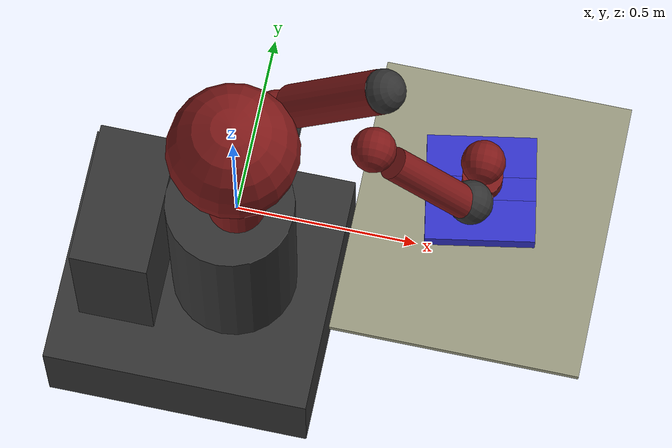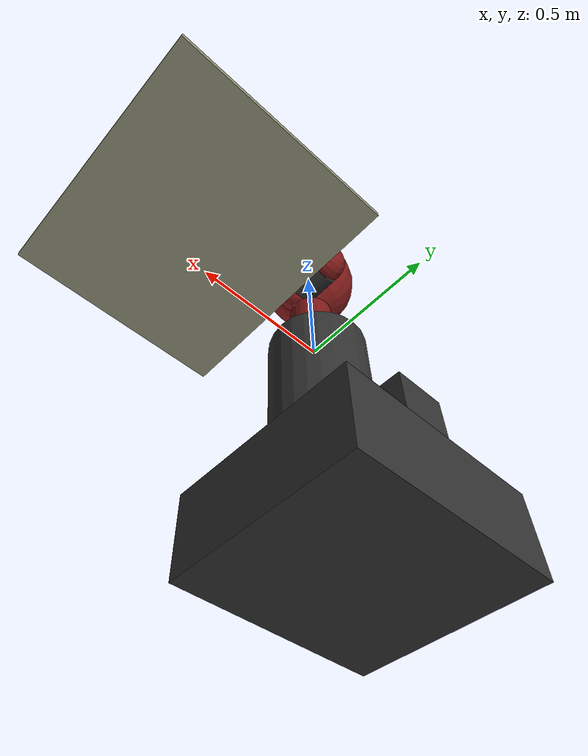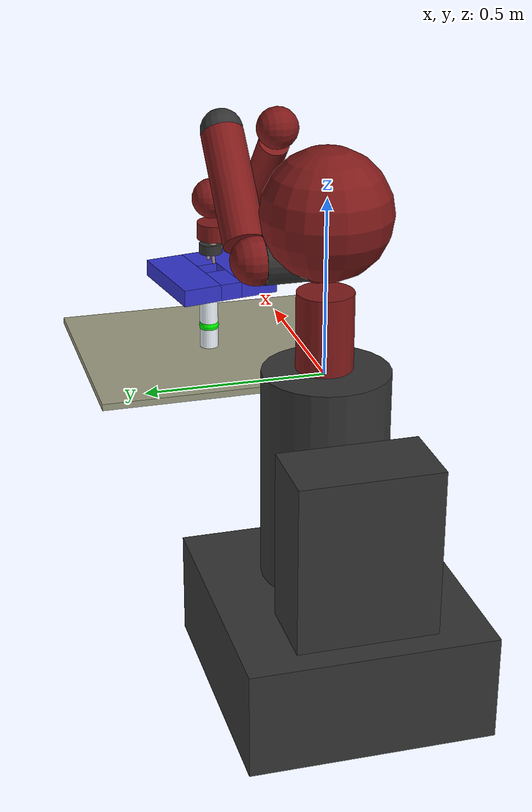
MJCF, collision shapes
<mujoco model="sawyer">
    <compiler angle="radian" meshdir="meshes/" />
    <size njmax="500" nconmax="100" />
    <asset>
        <mesh name="pedestal" file="pedestal.stl" />
        <mesh name="base" file="base.stl" />
        <mesh name="l0" file="l0.stl" />
        <mesh name="head" file="head.stl" />
        <mesh name="l1" file="l1.stl" />
        <mesh name="l2" file="l2.stl" />
        <mesh name="l3" file="l3.stl" />
        <mesh name="l4" file="l4.stl" />
        <mesh name="l5" file="l5.stl" />
        <mesh name="l6" file="l6.stl" />
        <!-- SIEMENS GEARS MESHES:-->
        <mesh name="base_plate" file="base_plate.stl" scale="0.04 0.04 0.04" />
        <mesh name="compound_gear" file="compound_gear.stl" scale="0.15 0.15 0.15" /> <!-- bigger hole -->
        <mesh name="gear1" file="gear1.stl" scale="0.24 0.24 0.24" />
        <mesh name="gear2" file="gear2.stl" scale="0.04 0.04 0.04" />
        <mesh name="gear2_1" file="gear2_1.stl" scale="0.04 0.04 0.04" />
        <mesh name="shaft1" file="shaft1.stl" scale="0.04 0.04 0.04" />
        <mesh name="shaft2" file="shaft2.stl" scale="0.04 0.04 0.04" />
    </asset>

    <default>
        <joint limited="true" damping="1" stiffness="0" armature=".1" user="0"/>
        <geom solref="0.008 1" solimp="0.95 0.95 0.01" margin="0.001" user="0"/>
        <motor ctrllimited="true" ctrlrange="-1 1"/>
        <position ctrllimited="true"/>

        <default class='0'>
            <geom friction="1 0.005 0.001" rgba=".75 .6 .5 1" contype="1" conaffinity="0"/>
        </default>

        <default class='1'>
            <geom friction="1 0.005 0.001" rgba=".7 .6 .55 1" contype="1" conaffinity="0"/>
        </default>

        <default class='arm'>
            <joint damping="5"/>
        </default>
    </default>
    <worldbody>
        <light directional="true" cutoff="40" exponent="10" diffuse=".4 .4 .4" specular=".7 .7 .7" pos="0 0 1.5" dir="0 0 -1"/>

        <geom name="tableTop" type="box" pos="0.65663183  0.16704036  -0.16950524" size="0.35 0.4 0.01" rgba=".6 .6 .5 1" contype="1" conaffinity="1"/>

        <body name="base" pos="0 0 0">
            <site name="basesite" pos="0 0 0" size="0.01" />
            <inertial pos="0 0 0" mass="0" diaginertia="0 0 0" />
            <body name="controller_box" pos="0 0 0">
                <inertial pos="-0.325 0 -0.38" mass="46.64" diaginertia="1.71363 1.27988 0.809981" />
                <geom size="0.11 0.2 0.265" pos="-0.325 0 -0.38" type="box" rgba="0.2 0.2 0.2 1"/>
            </body>
            <body name="pedestal_feet" pos="0 0 0">
                <inertial pos="-0.1225 0 -0.758" mass="167.09" diaginertia="8.16095 9.59375 15.0785" />
                <geom size="0.385 0.35 0.155" pos="-0.1225 0 -0.758" type="box" rgba="0.2 0.2 0.2 1"/>
            </body>
            <body name="torso" pos="0 0 0">
                <inertial pos="0 0 0" mass="0.0001" diaginertia="1e-08 1e-08 1e-08" />
                <geom size="0.05 0.05 0.05" type="box" contype="0" conaffinity="0" group="1" rgba="0.2 0.2 0.2 1" />
            </body>
            <body name="pedestal" pos="0 0 0">
                <inertial pos="0 0 0" quat="0.659267 -0.259505 -0.260945 0.655692" mass="60.864" diaginertia="6.0869 5.81635 4.20915" />
                <geom pos="0.26 0.345 -0.91488" quat="0.5 0.5 -0.5 -0.5" type="mesh" contype="0" conaffinity="0" group="1" rgba="0.2 0.2 0.2 1" mesh="pedestal" />
                <geom size="0.18 0.31" pos="-0.02 0 -0.29" type="cylinder" rgba="0.2 0.2 0.2 0" />
            </body>
            <body name="right_arm_base_link" pos="0 0 0">
                <inertial pos="-0.0006241 -2.8025e-05 0.065404" quat="-0.209285 0.674441 0.227335 0.670558" mass="2.0687" diaginertia="0.00740351 0.00681776 0.00672942" />
                <geom type="mesh" contype="0" conaffinity="0" group="1" rgba="0.5 0.1 0.1 1" mesh="base" />
                <geom size="0.08 0.12" pos="0 0 0.12" type="cylinder" rgba="0.5 0.1 0.1 0" />
                <body name="right_l0" pos="0 0 0.08">
                    <inertial pos="0.024366 0.010969 0.14363" quat="0.894823 0.00899958 -0.170275 0.412573" mass="5.3213" diaginertia="0.0651588 0.0510944 0.0186218" />
                    <joint name="right_j0" pos="0 0 0" axis="0 0 1" limited="true" range="-3.0503 3.0503" damping="10"/>
                    <geom type="mesh" contype="0" conaffinity="0" group="1" rgba="0.5 0.1 0.1 1" mesh="l0" />
                    <geom size="0.07" pos="0.08 0 0.23" rgba="0.5 0.1 0.1 0" />
                    <body name="head" pos="0 0 0.2965">
                        <inertial pos="0.0053207 -2.6549e-05 0.1021" quat="0.999993 7.08405e-05 -0.00359857 -0.000626247" mass="1.5795" diaginertia="0.0118334 0.00827089 0.00496574" />
                        <geom type="mesh" contype="0" conaffinity="0" group="1" rgba="0.5 0.1 0.1 1" mesh="head" />
                        <geom size="0.18" pos="0 0 0.08" rgba="0.5 0.1 0.1 0" />
                        <body name="screen" pos="0.03 0 0.105" quat="0.5 0.5 0.5 0.5">
                            <inertial pos="0 0 0" mass="0.0001" diaginertia="1e-08 1e-08 1e-08" />
                            <geom size="0.12 0.07 0.001" type="box" contype="0" conaffinity="0" group="1" rgba="0.2 0.2 0.2 0" />
                            <geom size="0.001" rgba="0.2 0.2 0.2 0" />
                        </body>
                        <body name="head_camera" pos="0.0228027 0 0.216572" quat="0.342813 -0.618449 0.618449 -0.342813">
                            <inertial pos="0.0228027 0 0.216572" quat="0.342813 -0.618449 0.618449 -0.342813" mass="0" diaginertia="0 0 0" />
                            <site name="headsite" pos="0 0 0" size="0.01" />
                        </body>
                    </body>
                    <body name="right_torso_itb" pos="-0.055 0 0.22" quat="0.707107 0 -0.707107 0">
                        <inertial pos="0 0 0" mass="0.0001" diaginertia="1e-08 1e-08 1e-08" />
                    </body>
                    <body name="right_l1" pos="0.081 0.05 0.237" quat="0.6532815 -0.6532815 0.2705981 0.2705981"> <!-- quat="0.5 -0.5 0.5 0.5"> before change-->
                        <inertial pos="-0.0030849 -0.026811 0.092521" quat="0.424888 0.891987 0.132364 -0.0794296" mass="4.505" diaginertia="0.0224339 0.0221624 0.0097097" />
                        <joint name="right_j1" pos="0 0 0" axis="0 0 1" limited="true" range="-3.8095 2.2736" damping="10"/>
                        <geom type="mesh" contype="0" conaffinity="0" group="1" rgba="0.5 0.1 0.1 1" mesh="l1" />
                        <geom size="0.07" pos="0 0 0.1225" rgba="0.5 0.1 0.1 0" />
                        <body name="right_l2" pos="0 -0.14 0.1425" quat="0.707107 0.707107 0 0">
                            <inertial pos="-0.00016044 -0.014967 0.13582" quat="0.707831 -0.0524761 0.0516007 0.702537" mass="1.745" diaginertia="0.0257928 0.025506 0.00292515" />
                            <joint name="right_j2" pos="0 0 0" axis="0 0 1" limited="true" range="-3.0426 3.0426" damping="10"/>
                            <geom type="mesh" contype="0" conaffinity="0" group="1" rgba="0.5 0.1 0.1 1" mesh="l2" />
                            <geom size="0.06 0.17" pos="0 0 0.08" type="cylinder" rgba="0.5 0.1 0.1 0" />
                            <body name="right_l3" pos="0 -0.042 0.26" quat="0.5 -0.5 0.5 0.5"> <!-- quat="0.707107 -0.707107 0 0"> before change-->
                                <site name="armsite" pos="0 0 0" size="0.01" />
                                <inertial pos="-0.0048135 -0.0281 -0.084154" quat="0.902999 0.385391 -0.0880901 0.168247" mass="2.5097" diaginertia="0.0102404 0.0096997 0.00369622" />
                                <joint name="right_j3" pos="0 0 0" axis="0 0 1" limited="true" range="-3.0439 3.0439" damping="10"/>
                                <geom type="mesh" contype="0" conaffinity="0" group="1" rgba="0.5 0.1 0.1 1" mesh="l3" />
                                <geom size="0.06" pos="0 -0.01 -0.12" rgba="0.5 0.1 0.1 0" />
                                <body name="right_l4" pos="0 -0.125 -0.1265" quat="0.707107 0.707107 0 0">
                                    <inertial pos="-0.0018844 0.0069001 0.1341" quat="0.803612 0.031257 -0.0298334 0.593582" mass="1.1136" diaginertia="0.0136549 0.0135493 0.00127353" />
                                    <joint name="right_j4" pos="0 0 0" axis="0 0 1" limited="true" range="-2.9761 2.9761" damping="10" />
                                    <geom type="mesh" contype="0" conaffinity="0" group="1" rgba="0.5 0.1 0.1 1" mesh="l4" />
                                    <geom size="0.045 0.15" pos="0 0 0.11" type="cylinder" rgba="0.5 0.1 0.1 0" />
                                    <body name="right_arm_itb" pos="-0.055 0 0.075" quat="0.707107 0 -0.707107 0">
                                        <inertial pos="0 0 0" mass="0.0001" diaginertia="1e-08 1e-08 1e-08" />
                                    </body>
                                    <body name="right_l5" pos="0 0.031 0.275" quat="0.6532815 -0.6532815 0.2705981 0.2705981"> <!-- quat="0.707107 -0.707107 0 0"> before change-->
                                        <inertial pos="0.0061133 -0.023697 0.076416" quat="0.404076 0.9135 0.0473125 0.00158335" mass="1.5625" diaginertia="0.00474131 0.00422857 0.00190672" />
                                        <joint name="right_j5" pos="0 0 0" axis="0 0 1" limited="true" range="-2.9761 2.9761" damping="10"/>
                                        <geom type="mesh" contype="0" conaffinity="0" group="1" rgba="0.5 0.1 0.1 1" mesh="l5" />
                                        <geom size="0.06" pos="0 0 0.1" rgba="0.5 0.1 0.1 0" />
                                        <body name="right_hand_camera" pos="0.039552 -0.033 0.0695" quat="0.707107 0 0.707107 0">
                                            <inertial pos="0.039552 -0.033 0.0695" quat="0.707107 0 0.707107 0" mass="0" diaginertia="0 0 0" />
                                        </body>
                                        <body name="right_wrist" pos="0 0 0.10541" quat="0.707107 0.707107 0 0">
                                            <inertial pos="0 0 0.10541" quat="0.707107 0.707107 0 0" mass="0" diaginertia="0 0 0" />
                                        </body>
                                        <body name="right_l6" pos="0 -0.11 0.1053" quat="0.0616248 0.06163 -0.704416 0.704416">
                                            <inertial pos="-8.0726e-06 0.0085838 -0.0049566" quat="0.479044 0.515636 -0.513069 0.491322" mass="0.3292" diaginertia="0.000360258 0.000311068 0.000214974" />
                                            <joint name="right_j6" pos="0 0 0" axis="0 0 1" limited="true" range="-4.7124 4.7124" damping="10"/>
                                            <geom type="mesh" contype="0" conaffinity="0" group="1" rgba="0.5 0.1 0.1 1" mesh="l6" />
                                            <geom size="0.055 0.025" pos="0 0.015 -0.01" type="cylinder" rgba="0.5 0.1 0.1 0" />
                                            <body name="right_hand" pos="0 0 0.0245" quat="0.707107 0 0 0.707107">
                                                <inertial pos="1e-08 1e-08 1e-08" quat="0.820473 0.339851 -0.17592 0.424708" mass="1e-08" diaginertia="1e-08 1e-08 1e-08" />
                                                <geom size="0.035 0.015" pos="0 0 0.02" type="cylinder" rgba="0.2 0.2 0.2 0"/>

<!--  ================= BEGIN GRIPPER ================= /-->
                                                <body name="claw" pos="0 0 0" quat="-1 0 1 0">
                                                    <geom class="1" name="Geomclaw" type="capsule" fromto="0 .02 0 0 -.02 0" size="0.01" contype="0" conaffinity="0"/>  <!--excluded the grippers from contact dynamics-->
                                                                                                                                                                    <!--set contype and conaffinity back to 1 for working grippers-->
                                                    <body name="rightclaw" pos=".01 -.02 0" >
                                                        <geom name="rightclaw_it" class="1" type="capsule" fromto="0 0 0 .05 0.0 0.0"   size="0.005" contype="0" conaffinity="0" />
                                                        <joint name="rc_close" type="slide" pos="0 0 0" axis="0 1 0" range="0 0.03" user="008"/>
                                                    </body>

                                                    <body name="leftclaw" pos=".01 .02 0">
                                                        <geom name="leftclaw_it" class="1" type="capsule" fromto="0 0 0 .05 0.0 0.0"    size="0.005" contype="0" conaffinity="0" />
                                                        <site name="endeffector" pos="0 0 0" size="0.01" />
                                                    </body>
                                                </body>
<!--  ================= END GRIPPER ================= /-->
<!--  ================= BEGIN DISC ================= /-->

                                                <body name="r_gripper_tool_frame" pos="0 0 0.11">
                                                    <site name="disc_center" pos="0 0 0" size="0.01" rgba='0 1 0 1' />
                                                    <!--correspond to the disk-->

                                                    <body name="tool" pos="0 0 0">
                                                        <geom name="wc1" pos="0.0915 0 0" rgba="0.2 0.2 0.8 1" type="box" size="0.0585 0.15 0.025" contype="1" conaffinity="1" />
                                                        <geom name="wc2" pos="-0.0915 0 0" rgba="0.2 0.2 0.8 1" type="box" size="0.0585 0.15 0.025" contype="1" conaffinity="1" />
                                                        <geom name="wc3" pos="0.0 0.0915 0" rgba="0.2 0.2 0.8 1" type="box" size="0.033 0.0585 0.025" contype="1" conaffinity="1" />
                                                        <geom name="wc4" pos="0.0 -0.0915 0" rgba="0.2 0.2 0.8 1" type="box" size="0.033 0.0585 0.025" contype="1" conaffinity="1" />
                                                    </body>

                                                </body>

<!--  ================= END DISC ================= /-->

                                            </body>
                                        </body>
                                    </body>s
                                    <body name="right_l4_2" pos="0 0 0">
                                        <inertial pos="1e-08 1e-08 1e-08" quat="0.820473 0.339851 -0.17592 0.424708" mass="1e-08" diaginertia="1e-08 1e-08 1e-08" />
                                        <geom size="0.06" pos="0 0.01 0.26" rgba="0.2 0.2 0.2 0"/>
                                    </body>
                                </body>
                            </body>
                            <body name="right_l2_2" pos="0 0 0">
                                <inertial pos="1e-08 1e-08 1e-08" quat="0.820473 0.339851 -0.17592 0.424708" mass="1e-08" diaginertia="1e-08 1e-08 1e-08" />
                                <geom size="0.06" pos="0 0 0.26" rgba="0.2 0.2 0.2 0"/>
                            </body>
                        </body>
                        <body name="right_l1_2" pos="0 0 0">
                            <inertial pos="1e-08 1e-08 1e-08" quat="0.820473 0.339851 -0.17592 0.424708" mass="1e-08" diaginertia="1e-08 1e-08 1e-08" />
                            <geom size="0.07 0.07" pos="0 0 0.035" type="cylinder" rgba="0.2 0.2 0.2 0"/>
                        </body>
                    </body>
                </body>
            </body>
        </body>

        <!-- Base plate has a concave geometry and assembling a gear will only work if we split this base plate and the gear in multiple concave objects. Look up V-HACD-->
        <!-- -20cm: pos="0.65663183  0.16704036  -0.21950524"-->
        <!-- TARGET: -->
        <body mocap="true" name="target" pos="0.65663183  0.16704036  -0.08950524"> <!-- -20cm:_pos="0.65663183  0.16704036  -0.13950524"-->
            <geom conaffinity="0" contype="0" pos="0 0 0" rgba="0 1 0 1" size="0.03" type="sphere"/>
        </body>

         <body name="peg" pos="0.65663183  0.16704036  -0.16950524">   <!-- Match size of SIEMENS Base Plate original: size="0.028"-->
            <!--huge density to prevent arm from moving peg-->
            <geom name="peg_geom" rgba="0.941176 0.972549 1 1" type="cylinder" fromto="0 0 0 0 0 0.164" size="0.028" density="2000000" contype="1" conaffinity="1" />
        </body>
    </worldbody>s

    <actuator>
        <motor joint="right_j0" ctrlrange="-100.0 100.0" ctrllimited="false"/>
        <motor joint="right_j1" ctrlrange="-100.0 100.0" ctrllimited="false"/>
        <motor joint="right_j2" ctrlrange="-100.0 100.0" ctrllimited="false"/>
        <motor joint="right_j3" ctrlrange="-100.0 100.0" ctrllimited="false"/>
        <motor joint="right_j4" ctrlrange="-100.0 100.0" ctrllimited="false"/>
        <motor joint="right_j5" ctrlrange="-100.0 100.0" ctrllimited="false"/>
        <motor joint="right_j6" ctrlrange="-100.0 100.0" ctrllimited="false"/>
<!-- Gripper not used with gears    -->
    </actuator>

</mujoco>
